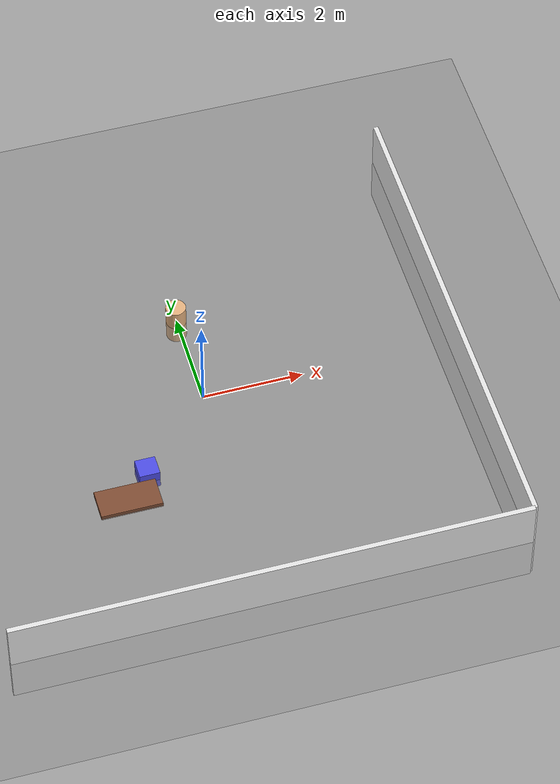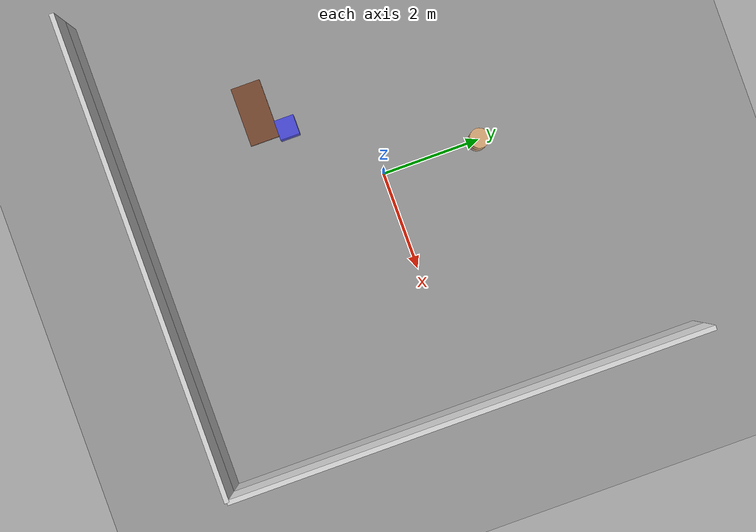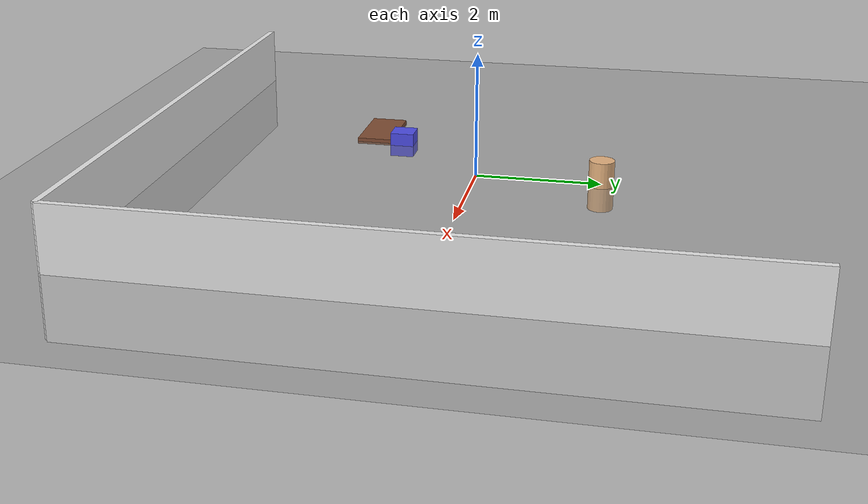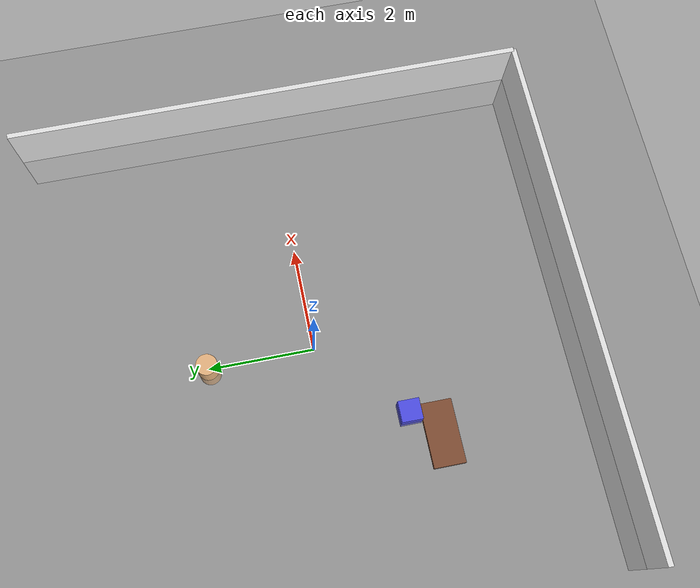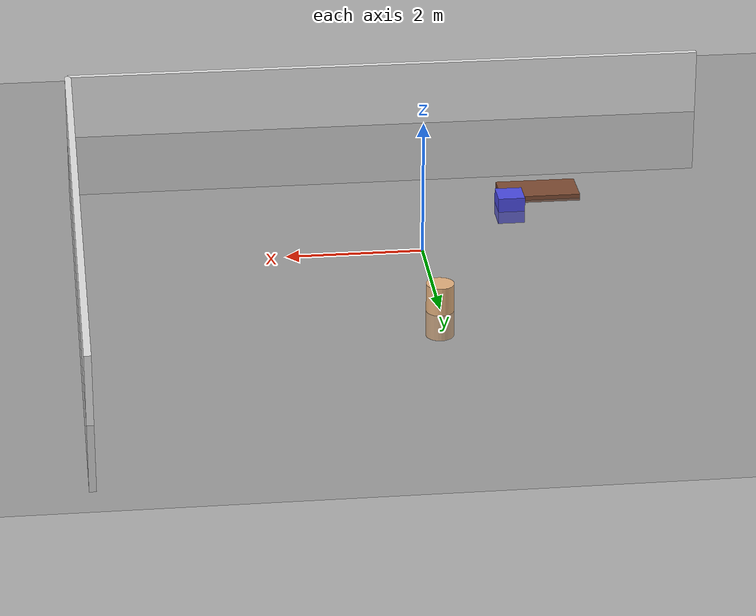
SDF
<sdf version="1.6">
 <world name="office">
  <light name="sun" type="directional">
   <pose>0 0 10 0 0 0</pose>
   <diffuse>0.8 0.8 0.8 1</diffuse>
   <specular>0.2 0.2 0.2 1</specular>
   <direction>-0.5 0.1 -0.9</direction>
  </light>
  <light name="light1" type="point">
   <pose>-2 0 3 0 0 0</pose>
   <diffuse>0.3 0.3 0.3 1</diffuse>
   <specular>0.1 0.1 0.1 1</specular>
   <range>5</range>
  </light>
  <model name="ground_plane">
   <static>true</static>
   <link name="link">
    <collision name="collision">
     <geometry><plane><normal>0 0 1</normal><size>20 20</size></plane></geometry>
    </collision>
    <visual name="visual">
     <geometry><plane><normal>0 0 1</normal><size>20 20</size></plane></geometry>
     <material><ambient>0.3 0.3 0.3 1</ambient><diffuse>0.5 0.5 0.5 1</diffuse></material>
    </visual>
   </link>
  </model>
  <model name="wall1">
   <static>true</static>
   <pose>0 -5 0 0 0 0</pose>
   <link name="link">
    <collision name="collision"><geometry><box><size>10 0.1 2</size></box></geometry></collision>
    <visual name="visual">
     <geometry><box><size>10 0.1 2</size></box></geometry>
     <material><ambient>0.8 0.8 0.8 1</ambient><diffuse>0.9 0.9 0.9 1</diffuse></material>
    </visual>
   </link>
  </model>
  <model name="wall2">
   <static>true</static>
   <pose>5 0 0 0 0 1.5708</pose>
   <link name="link">
    <collision name="collision"><geometry><box><size>10 0.1 2</size></box></geometry></collision>
    <visual name="visual">
     <geometry><box><size>10 0.1 2</size></box></geometry>
     <material><ambient>0.8 0.8 0.8 1</ambient><diffuse>0.9 0.9 0.9 1</diffuse></material>
    </visual>
   </link>
  </model>
  <model name="desk1">
   <static>true</static>
   <pose>-2 -2 0 0 0 0</pose>
   <link name="link">
    <collision name="collision"><geometry><box><size>1.2 0.6 0.1</size></box></geometry></collision>
    <visual name="visual">
     <geometry><box><size>1.2 0.6 0.1</size></box></geometry>
     <material><ambient>0.4 0.2 0.1 1</ambient><diffuse>0.5 0.3 0.2 1</diffuse></material>
    </visual>
   </link>
  </model>
  <model name="chair1">
   <static>true</static>
   <pose>-1.5 -1.5 0 0 0 0</pose>
   <link name="link">
    <collision name="collision"><geometry><box><size>0.4 0.4 0.4</size></box></geometry></collision>
    <visual name="visual">
     <geometry><box><size>0.4 0.4 0.4</size></box></geometry>
     <material><ambient>0.2 0.2 0.8 1</ambient><diffuse>0.3 0.3 0.9 1</diffuse></material>
    </visual>
   </link>
  </model>
  <model name="person1">
   <pose>0 2 0 0 0 0</pose>
   <link name="link">
    <collision name="collision">
     <geometry><cylinder><radius>0.2</radius><length>0.8</length></cylinder></geometry>
    </collision>
    <visual name="visual">
     <geometry><cylinder><radius>0.2</radius><length>0.8</length></cylinder></geometry>
     <material><ambient>0.8 0.6 0.4 1</ambient><diffuse>0.9 0.7 0.5 1</diffuse></material>
    </visual>
   </link>
  </model>
 </world>
</sdf>
